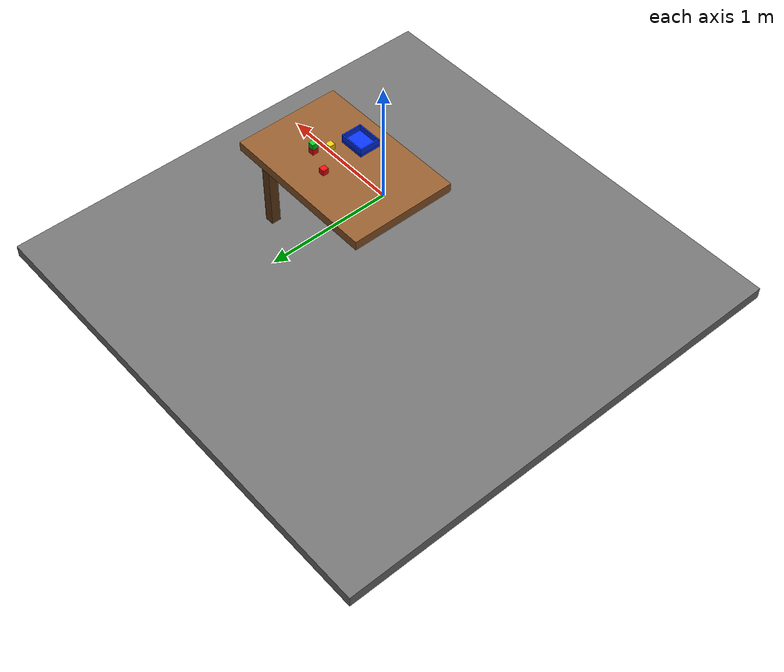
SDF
<?xml version="1.0"?>
<sdf version="1.9">
  <world name="tabletop">
    <gravity>0 0 -9.81</gravity>
    <physics name="physics" type="ignored">
      <!-- 500 Hz is ample for the 100 Hz controller and halves idle physics work. -->
      <max_step_size>0.002</max_step_size>
      <real_time_factor>1.0</real_time_factor>
      <real_time_update_rate>500</real_time_update_rate>
    </physics>

    <plugin filename="gz-sim-physics-system" name="gz::sim::systems::Physics"/>
    <plugin filename="gz-sim-user-commands-system" name="gz::sim::systems::UserCommands"/>
    <plugin filename="gz-sim-scene-broadcaster-system" name="gz::sim::systems::SceneBroadcaster"/>
    <plugin filename="gz-sim-sensors-system" name="gz::sim::systems::Sensors">
      <render_engine>ogre2</render_engine>
    </plugin>

    <gui fullscreen="false">
      <plugin filename="MinimalScene" name="3D View">
        <gz-gui>
          <title>RGB camera view</title>
          <property type="bool" key="showTitleBar">false</property>
          <property type="string" key="state">docked</property>
        </gz-gui>
        <engine>ogre2</engine>
        <scene>scene</scene>
        <ambient_light>0.4 0.4 0.4</ambient_light>
        <background_color>0.8 0.8 0.8</background_color>
        <!-- Keep this pose synchronized with the scene_camera model below. -->
        <camera_pose>1.3 0.85 1.3 0 0.785398 -2.356194</camera_pose>
      </plugin>
      <plugin filename="GzSceneManager" name="Scene Manager"/>
      <plugin filename="InteractiveViewControl" name="Interactive view control"/>
    </gui>

    <light name="key_light" type="directional">
      <pose>0 0 4 0 0 0</pose>
      <cast_shadows>true</cast_shadows>
      <diffuse>0.9 0.9 0.9 1</diffuse>
      <specular>0.2 0.2 0.2 1</specular>
      <direction>-0.4 0.2 -1</direction>
    </light>

    <model name="scene_camera">
      <static>true</static>
      <!-- 45-degree diagonal / 45-degree downward view; the robot is on the far side. -->
      <pose>1.3 0.85 1.3 0 0.785398 -2.356194</pose>
      <link name="camera_link">
        <sensor name="rgb_camera" type="camera">
          <topic>/camera/image_raw</topic>
          <always_on>true</always_on>
          <update_rate>5</update_rate>
          <visualize>false</visualize>
          <camera>
            <horizontal_fov>1.0471975512</horizontal_fov>
            <image>
              <width>640</width>
              <height>480</height>
              <format>R8G8B8</format>
            </image>
            <clip>
              <near>0.05</near>
              <far>5.0</far>
            </clip>
          </camera>
        </sensor>
      </link>
    </model>

    <model name="ground">
      <static>true</static>
      <pose>0 0 -0.82 0 0 0</pose>
      <link name="ground_link">
        <collision name="collision"><geometry><box><size>4 4 0.1</size></box></geometry></collision>
        <visual name="visual">
          <geometry><box><size>4 4 0.1</size></box></geometry>
          <material><ambient>0.35 0.35 0.35 1</ambient><diffuse>0.45 0.45 0.45 1</diffuse></material>
        </visual>
      </link>
    </model>

    <!-- The work surface is z=0, matching the Panda base frame. -->
    <model name="table">
      <static>true</static>
      <link name="table_link">
        <collision name="top_collision"><pose>0.45 0 -0.04 0 0 0</pose><geometry><box><size>1.35 0.9 0.08</size></box></geometry></collision>
        <visual name="top_visual"><pose>0.45 0 -0.04 0 0 0</pose><geometry><box><size>1.35 0.9 0.08</size></box></geometry><material><ambient>0.42 0.25 0.12 1</ambient><diffuse>0.58 0.36 0.18 1</diffuse></material></visual>
        <collision name="leg1_collision"><pose>0.95 0.32 -0.42 0 0 0</pose><geometry><box><size>0.08 0.08 0.76</size></box></geometry></collision>
        <visual name="leg1_visual"><pose>0.95 0.32 -0.42 0 0 0</pose><geometry><box><size>0.08 0.08 0.76</size></box></geometry><material><ambient>0.3 0.18 0.08 1</ambient><diffuse>0.4 0.24 0.1 1</diffuse></material></visual>
        <collision name="leg2_collision"><pose>0.95 -0.32 -0.42 0 0 0</pose><geometry><box><size>0.08 0.08 0.76</size></box></geometry></collision>
        <visual name="leg2_visual"><pose>0.95 -0.32 -0.42 0 0 0</pose><geometry><box><size>0.08 0.08 0.76</size></box></geometry><material><ambient>0.3 0.18 0.08 1</ambient><diffuse>0.4 0.24 0.1 1</diffuse></material></visual>
      </link>
    </model>

    <model name="red_cube">
      <pose>0.46 0.18 0.025 0 0 0</pose>
      <link name="cube_link">
        <inertial><mass>0.06</mass><inertia><ixx>0.000025</ixx><iyy>0.000025</iyy><izz>0.000025</izz></inertia></inertial>
        <collision name="collision">
          <geometry><box><size>0.05 0.05 0.05</size></box></geometry>
          <surface><friction><ode><mu>1.2</mu><mu2>1.2</mu2></ode></friction></surface>
        </collision>
        <visual name="visual"><geometry><box><size>0.05 0.05 0.05</size></box></geometry><material><ambient>0.8 0.03 0.03 1</ambient><diffuse>0.95 0.05 0.05 1</diffuse></material></visual>
      </link>
    </model>

    <!-- Target cube at the bottom of a two-cube stack. -->
    <model name="red_cube_stacked_lower">
      <pose>0.68 0.10 0.025 0 0 0</pose>
      <link name="cube_link">
        <inertial><mass>0.06</mass><inertia><ixx>0.000025</ixx><iyy>0.000025</iyy><izz>0.000025</izz></inertia></inertial>
        <collision name="collision">
          <geometry><box><size>0.05 0.05 0.05</size></box></geometry>
          <surface><friction><ode><mu>1.2</mu><mu2>1.2</mu2></ode></friction></surface>
        </collision>
        <visual name="visual"><geometry><box><size>0.05 0.05 0.05</size></box></geometry><material><ambient>0.8 0.03 0.03 1</ambient><diffuse>0.95 0.05 0.05 1</diffuse></material></visual>
      </link>
    </model>

    <!-- Distractor balanced directly on the second red target cube. -->
    <model name="green_cube_stacked_upper">
      <pose>0.68 0.10 0.075 0 0 0</pose>
      <link name="cube_link">
        <inertial><mass>0.06</mass><inertia><ixx>0.000025</ixx><iyy>0.000025</iyy><izz>0.000025</izz></inertia></inertial>
        <collision name="collision">
          <geometry><box><size>0.05 0.05 0.05</size></box></geometry>
          <surface><friction><ode><mu>1.2</mu><mu2>1.2</mu2></ode></friction></surface>
        </collision>
        <visual name="visual"><geometry><box><size>0.05 0.05 0.05</size></box></geometry><material><ambient>0.02 0.55 0.08 1</ambient><diffuse>0.03 0.8 0.12 1</diffuse></material></visual>
      </link>
    </model>

    <!-- Separate non-target distractor. -->
    <model name="yellow_cube">
      <!-- Align its center with the tray's far edge relative to the arm: 0.52 + 0.22 / 2. -->
      <pose>0.63 -0.02 0.025 0 0 0</pose>
      <link name="cube_link">
        <inertial><mass>0.06</mass><inertia><ixx>0.000025</ixx><iyy>0.000025</iyy><izz>0.000025</izz></inertia></inertial>
        <collision name="collision">
          <geometry><box><size>0.05 0.05 0.05</size></box></geometry>
          <surface><friction><ode><mu>1.2</mu><mu2>1.2</mu2></ode></friction></surface>
        </collision>
        <visual name="visual"><geometry><box><size>0.05 0.05 0.05</size></box></geometry><material><ambient>0.8 0.62 0.02 1</ambient><diffuse>0.98 0.78 0.03 1</diffuse></material></visual>
      </link>
    </model>

    <model name="blue_tray">
      <pose>0.52 -0.22 0.012 0 0 0</pose>
      <link name="tray_link">
        <inertial>
          <mass>0.5</mass>
          <inertia><ixx>0.0015</ixx><iyy>0.0022</iyy><izz>0.0034</izz></inertia>
        </inertial>
        <collision name="base_collision">
          <geometry><box><size>0.22 0.18 0.024</size></box></geometry>
          <surface><friction><ode><mu>1.2</mu><mu2>1.2</mu2></ode></friction></surface>
        </collision>
        <visual name="base_visual"><geometry><box><size>0.22 0.18 0.024</size></box></geometry><material><ambient>0.02 0.12 0.8 1</ambient><diffuse>0.03 0.2 0.95 1</diffuse></material></visual>
        <collision name="rim1_collision"><pose>0.105 0 0.035 0 0 0</pose><geometry><box><size>0.01 0.18 0.05</size></box></geometry></collision>
        <visual name="rim1_visual"><pose>0.105 0 0.035 0 0 0</pose><geometry><box><size>0.01 0.18 0.05</size></box></geometry><material><ambient>0.02 0.12 0.8 1</ambient><diffuse>0.03 0.2 0.95 1</diffuse></material></visual>
        <collision name="rim2_collision"><pose>-0.105 0 0.035 0 0 0</pose><geometry><box><size>0.01 0.18 0.05</size></box></geometry></collision>
        <visual name="rim2_visual"><pose>-0.105 0 0.035 0 0 0</pose><geometry><box><size>0.01 0.18 0.05</size></box></geometry><material><ambient>0.02 0.12 0.8 1</ambient><diffuse>0.03 0.2 0.95 1</diffuse></material></visual>
        <collision name="rim3_collision"><pose>0 0.085 0.035 0 0 0</pose><geometry><box><size>0.22 0.01 0.05</size></box></geometry></collision>
        <visual name="rim3_visual"><pose>0 0.085 0.035 0 0 0</pose><geometry><box><size>0.22 0.01 0.05</size></box></geometry><material><ambient>0.02 0.12 0.8 1</ambient><diffuse>0.03 0.2 0.95 1</diffuse></material></visual>
        <collision name="rim4_collision"><pose>0 -0.085 0.035 0 0 0</pose><geometry><box><size>0.22 0.01 0.05</size></box></geometry></collision>
        <visual name="rim4_visual"><pose>0 -0.085 0.035 0 0 0</pose><geometry><box><size>0.22 0.01 0.05</size></box></geometry><material><ambient>0.02 0.12 0.8 1</ambient><diffuse>0.03 0.2 0.95 1</diffuse></material></visual>
      </link>
    </model>
  </world>
</sdf>
